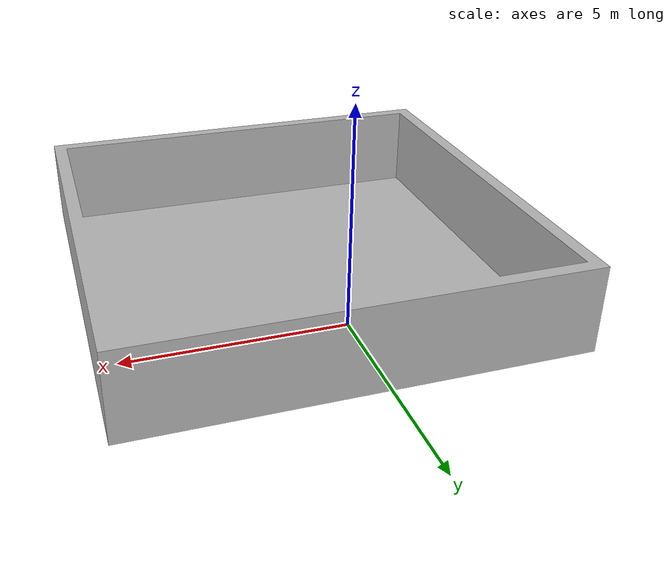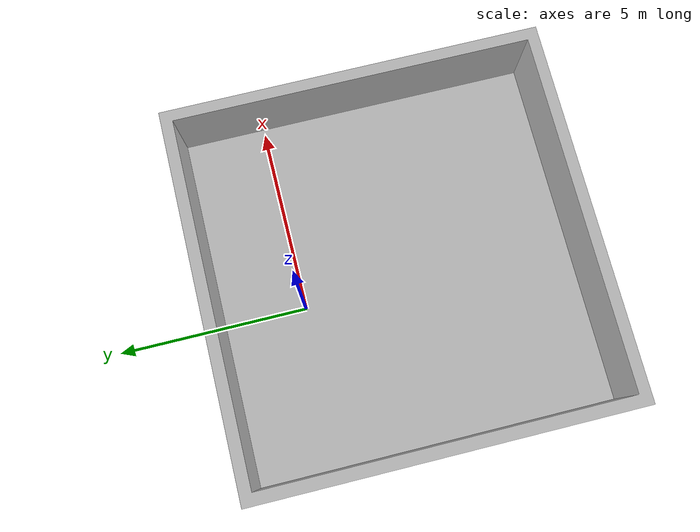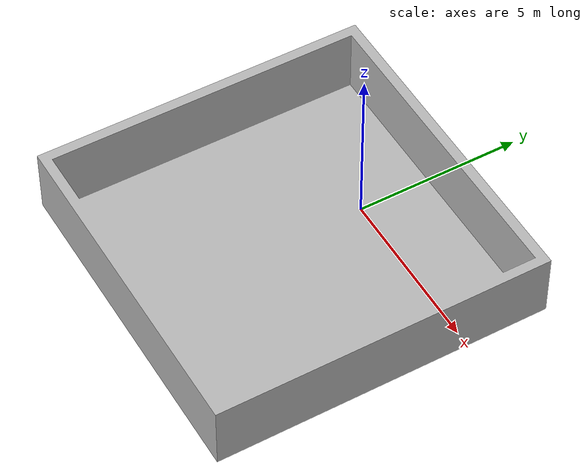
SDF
<sdf version="1.7">
 <world name="world">
  <plugin name="gazebo_occupancy_map" filename="libgazebo_2Dmap_plugin.so">
   <map_resolution>0.1</map_resolution>
   <map_height>0.3</map_height>
   <map_size_x>40</map_size_x>
   <map_size_y>40</map_size_y>
   <init_robot_x>0</init_robot_x>
   <init_robot_y>0</init_robot_y>
  </plugin>
  <scene>
   <ambient>0.8 0.8 0.8 1</ambient>
   <background>0 0 0 1</background>
   <grid>0</grid>
   <shadows>0</shadows>
  </scene>
  <light name="sun" type="directional">
   <cast_shadows>0</cast_shadows>
   <pose>0 0 10 0 -0 0</pose>
   <diffuse>0.8 0.8 0.8 1</diffuse>
   <specular>0.2 0.2 0.2 1</specular>
   <attenuation>
    <range>1000</range>
    <constant>0.9</constant>
    <linear>0.01</linear>
    <quadratic>0.001</quadratic>
   </attenuation>
   <direction>-0.5 0.1 -0.9</direction>
   <spot><inner_angle>0</inner_angle><outer_angle>0</outer_angle><falloff>0</falloff></spot>
  </light>
  <model name="Campus">
   <static>1</static>
   <link name="floor_1">
    <visual name="visual">
     <pose>0 0 -0.25 0 -0 0</pose>
     <geometry><mesh><uri>model://room2/meshes/room2.obj</uri></mesh></geometry>
    </visual>
    <collision name="collision">
     <pose>0 0 -0.25 0 -0 0</pose>
     <geometry><mesh><uri>model://room2/meshes/room2.obj</uri></mesh></geometry>
    </collision>
   </link>
   <pose>0.47498 -2.52106 0.250000 0 -0 0</pose>
  </model>
  <gravity>0 0 -9.8</gravity>
  <magnetic_field>6e-06 2.3e-05 -4.2e-05</magnetic_field>
  <atmosphere type="adiabatic"/>
  <physics type="ode">
   <max_step_size>0.001</max_step_size>
   <real_time_factor>1</real_time_factor>
   <real_time_update_rate>1000</real_time_update_rate>
  </physics>
  <spherical_coordinates>
   <surface_model>EARTH_WGS84</surface_model>
   <latitude_deg>0</latitude_deg>
   <longitude_deg>0</longitude_deg>
   <elevation>0</elevation>
   <heading_deg>0</heading_deg>
  </spherical_coordinates>
  <offset>22000 31500 0 0 0 0</offset>
  <crs>EPSG:3414</crs>
 </world>
</sdf>
